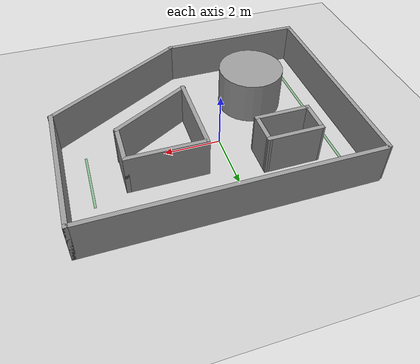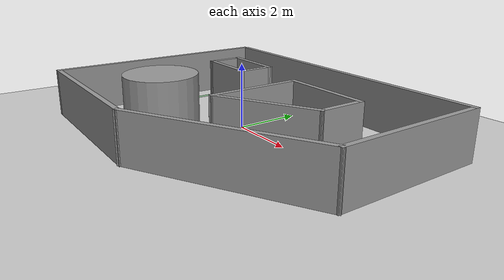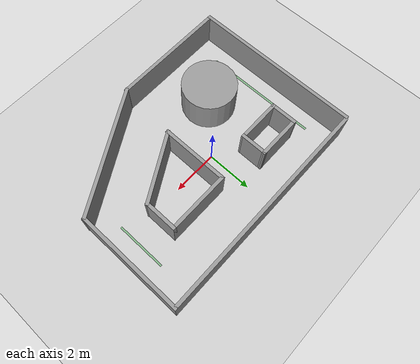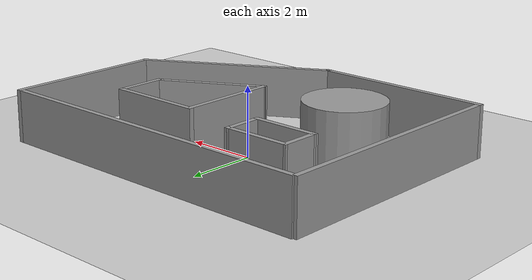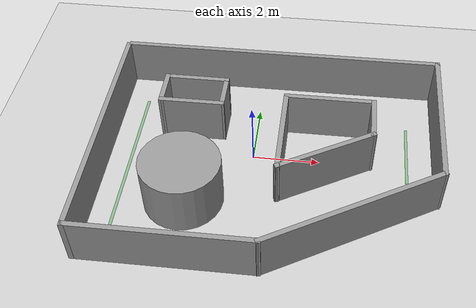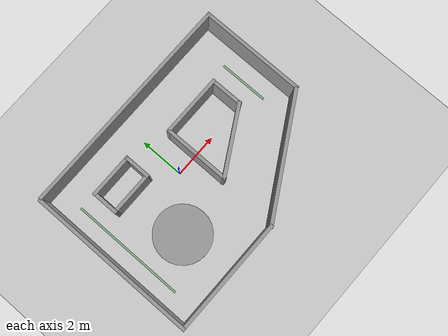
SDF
<sdf version="1.7">
 <world name="default">
  <light name="sun" type="directional">
   <pose>0 0 10 0 -0 0</pose>
   <diffuse>0.8 0.8 0.8 1</diffuse>
   <specular>0.2 0.2 0.2 1</specular>
   <attenuation>
    <range>1000</range>
    <constant>0.9</constant>
    <linear>0.01</linear>
    <quadratic>0.001</quadratic>
   </attenuation>
   <direction>-0.5 0.1 -0.9</direction>
   <spot><inner_angle>0</inner_angle><outer_angle>0</outer_angle><falloff>0</falloff></spot>
  </light>
  <model name="ground_plane">
   <static>1</static>
   <link name="link">
    <collision name="collision">
     <geometry><plane><normal>0 0 1</normal><size>100 100</size></plane></geometry>
     <surface>
      <contact><collide_bitmask>65535</collide_bitmask></contact>
      <friction><ode><mu>100</mu><mu2>50</mu2></ode></friction>
     </surface>
    </collision>
    <visual name="visual">
     <cast_shadows>0</cast_shadows>
     <geometry><plane><normal>0 0 1</normal><size>100 100</size></plane></geometry>
     <material>
      <script><uri>file://media/materials/scripts/gazebo.material</uri><name>Gazebo/Grey</name></script>
     </material>
    </visual>
   </link>
  </model>
  <gravity>0 0 -9.8</gravity>
  <magnetic_field>6e-06 2.3e-05 -4.2e-05</magnetic_field>
  <atmosphere type="adiabatic"/>
  <physics type="ode">
   <max_step_size>0.001</max_step_size>
   <real_time_factor>1</real_time_factor>
   <real_time_update_rate>1000</real_time_update_rate>
  </physics>
  <scene><ambient>0.4 0.4 0.4 1</ambient><background>0.7 0.7 0.7 1</background><shadows>1</shadows></scene>
  <spherical_coordinates>
   <surface_model>EARTH_WGS84</surface_model>
   <latitude_deg>0</latitude_deg>
   <longitude_deg>0</longitude_deg>
   <elevation>0</elevation>
   <heading_deg>0</heading_deg>
  </spherical_coordinates>
  <model name="map_3">
   <pose>0.536282 -0.465582 0 0 -0 0</pose>
   <link name="Wall_0">
    <collision name="Wall_0_Collision">
     <geometry><box><size>10 0.15 1.5</size></box></geometry>
     <pose>0 0 0.75 0 -0 0</pose>
    </collision>
    <visual name="Wall_0_Visual">
     <pose>0 0 0.75 0 -0 0</pose>
     <geometry><box><size>10 0.15 1.5</size></box></geometry>
     <material>
      <script><uri>file://media/materials/scripts/gazebo.material</uri><name>Gazebo/Grey</name></script>
      <ambient>1 1 1 1</ambient>
     </material>
     <meta><layer>0</layer></meta>
    </visual>
    <pose>0.036323 3.7137 0 0 -0 0</pose>
   </link>
   <link name="Wall_15">
    <collision name="Wall_15_Collision">
     <geometry><box><size>2 0.15 1.5</size></box></geometry>
     <pose>0 0 0.75 0 -0 0</pose>
    </collision>
    <visual name="Wall_15_Visual">
     <pose>0 0 0.75 0 -0 0</pose>
     <geometry><box><size>2 0.15 1.5</size></box></geometry>
     <material>
      <script><uri>file://media/materials/scripts/gazebo.material</uri><name>Gazebo/Grey</name></script>
      <ambient>1 1 1 1</ambient>
     </material>
     <meta><layer>0</layer></meta>
    </visual>
    <pose>-2.48368 2.2592 0 0 -0 0.001622</pose>
   </link>
   <link name="Wall_16">
    <collision name="Wall_16_Collision">
     <geometry><box><size>1.2 0.15 1.5</size></box></geometry>
     <pose>0 0 0.75 0 -0 0</pose>
    </collision>
    <visual name="Wall_16_Visual">
     <pose>0 0 0.75 0 -0 0</pose>
     <geometry><box><size>1.2 0.15 1.5</size></box></geometry>
     <material>
      <script><uri>file://media/materials/scripts/gazebo.material</uri><name>Gazebo/Grey</name></script>
      <ambient>1 1 1 1</ambient>
     </material>
     <meta><layer>0</layer></meta>
    </visual>
    <pose>-1.55868 1.7357 0 0 -0 -1.5708</pose>
   </link>
   <link name="Wall_17">
    <collision name="Wall_17_Collision">
     <geometry><box><size>2 0.15 1.5</size></box></geometry>
     <pose>0 0 0.75 0 -0 0</pose>
    </collision>
    <visual name="Wall_17_Visual">
     <pose>0 0 0.75 0 -0 0</pose>
     <geometry><box><size>2 0.15 1.5</size></box></geometry>
     <material>
      <script><uri>file://media/materials/scripts/gazebo.material</uri><name>Gazebo/Grey</name></script>
      <ambient>1 1 1 1</ambient>
     </material>
     <meta><layer>0</layer></meta>
    </visual>
    <pose>-2.48368 1.2092 0 0 -0 -3.13997</pose>
   </link>
   <link name="Wall_18">
    <collision name="Wall_18_Collision">
     <geometry><box><size>1.2 0.15 1.5</size></box></geometry>
     <pose>0 0 0.75 0 -0 0</pose>
    </collision>
    <visual name="Wall_18_Visual">
     <pose>0 0 0.75 0 -0 0</pose>
     <geometry><box><size>1.2 0.15 1.5</size></box></geometry>
     <material>
      <script><uri>file://media/materials/scripts/gazebo.material</uri><name>Gazebo/Grey</name></script>
      <ambient>1 1 1 1</ambient>
     </material>
     <meta><layer>0</layer></meta>
    </visual>
    <pose>-3.40868 1.7327 0 0 -0 1.5708</pose>
   </link>
   <link name="Wall_20">
    <collision name="Wall_20_Collision">
     <geometry><box><size>3 0.15 1.5</size></box></geometry>
     <pose>0 0 0.75 0 -0 0</pose>
    </collision>
    <visual name="Wall_20_Visual">
     <pose>0 0 0.75 0 -0 0</pose>
     <geometry><box><size>3 0.15 1.5</size></box></geometry>
     <material>
      <script><uri>file://media/materials/scripts/gazebo.material</uri><name>Gazebo/Grey</name></script>
      <ambient>1 1 1 1</ambient>
     </material>
     <meta><layer>0</layer></meta>
    </visual>
    <pose>0.341323 0.325698 0 0 -0 -1.5708</pose>
   </link>
   <link name="Wall_22">
    <collision name="Wall_22_Collision">
     <geometry><box><size>2.8 0.15 1.5</size></box></geometry>
     <pose>0 0 0.75 0 -0 0</pose>
    </collision>
    <visual name="Wall_22_Visual">
     <pose>0 0 0.75 0 -0 0</pose>
     <geometry><box><size>2.8 0.15 1.5</size></box></geometry>
     <material>
      <script><uri>file://media/materials/scripts/gazebo.material</uri><name>Gazebo/Grey</name></script>
      <ambient>1 1 1 1</ambient>
     </material>
     <meta><layer>0</layer></meta>
    </visual>
    <pose>1.66632 1.7507 0 0 -0 0</pose>
   </link>
   <link name="Wall_24">
    <collision name="Wall_24_Collision">
     <geometry><box><size>1.5 0.15 1.5</size></box></geometry>
     <pose>0 0 0.75 0 -0 0</pose>
    </collision>
    <visual name="Wall_24_Visual">
     <pose>0 0 0.75 0 -0 0</pose>
     <geometry><box><size>1.5 0.15 1.5</size></box></geometry>
     <material>
      <script><uri>file://media/materials/scripts/gazebo.material</uri><name>Gazebo/Grey</name></script>
      <ambient>1 1 1 1</ambient>
     </material>
     <meta><layer>0</layer></meta>
    </visual>
    <pose>2.99132 1.0757 0 0 -0 -1.5708</pose>
   </link>
   <link name="Wall_26">
    <collision name="Wall_26_Collision">
     <geometry><box><size>3.19466 0.15 1.5</size></box></geometry>
     <pose>0 0 0.75 0 -0 0</pose>
    </collision>
    <visual name="Wall_26_Visual">
     <pose>0 0 0.75 0 -0 0</pose>
     <geometry><box><size>3.19466 0.15 1.5</size></box></geometry>
     <material>
      <script><uri>file://media/materials/scripts/gazebo.material</uri><name>Gazebo/Grey</name></script>
      <ambient>1 1 1 1</ambient>
     </material>
     <meta><layer>0</layer></meta>
    </visual>
    <pose>1.66632 -0.349302 0 0 -0 0.515073</pose>
   </link>
   <link name="Wall_30">
    <collision name="Wall_30_Collision">
     <geometry><box><size>2.29 0.15 0.1</size></box></geometry>
     <pose>0 0 0.05 0 -0 0</pose>
    </collision>
    <visual name="Wall_30_Visual">
     <pose>0 0 0.05 0 -0 0</pose>
     <geometry><box><size>2.29 0.15 0.1</size></box></geometry>
     <material>
      <script><uri>file://media/materials/scripts/gazebo.material</uri><name>Gazebo/Grey</name></script>
      <ambient>1 1 1 1</ambient>
     </material>
     <meta><layer>0</layer></meta>
    </visual>
    <pose>-2.36018 -1.34641 0 0 -0 0</pose>
   </link>
   <link name="Wall_33">
    <collision name="Wall_33_Collision">
     <geometry><box><size>2.29 0.15 0.1</size></box></geometry>
     <pose>0 0 0.05 0 -0 0</pose>
    </collision>
    <visual name="Wall_33_Visual">
     <pose>0 0 0.05 0 -0 0</pose>
     <geometry><box><size>2.29 0.15 0.1</size></box></geometry>
     <material>
      <script><uri>file://media/materials/scripts/gazebo.material</uri><name>Gazebo/Grey</name></script>
      <ambient>1 1 1 1</ambient>
     </material>
     <meta><layer>0</layer></meta>
    </visual>
    <pose>-2.37095 -1.33891 0 0 -0 -1.5708</pose>
   </link>
   <link name="Wall_5">
    <collision name="Wall_5_Collision">
     <geometry><box><size>4.75 0.15 1.5</size></box></geometry>
     <pose>0 0 0.75 0 -0 0</pose>
    </collision>
    <visual name="Wall_5_Visual">
     <pose>0 0 0.75 0 -0 0</pose>
     <geometry><box><size>4.75 0.15 1.5</size></box></geometry>
     <material>
      <script><uri>file://media/materials/scripts/gazebo.material</uri><name>Gazebo/Grey</name></script>
      <ambient>1 1 1 1</ambient>
     </material>
     <meta><layer>0</layer></meta>
    </visual>
    <pose>4.96132 1.4137 0 0 -0 -1.5708</pose>
   </link>
   <link name="Wall_6">
    <collision name="Wall_6_Collision">
     <geometry><box><size>5.75 0.15 1.5</size></box></geometry>
     <pose>0 0 0.75 0 -0 0</pose>
    </collision>
    <visual name="Wall_6_Visual">
     <pose>0 0 0.75 0 -0 0</pose>
     <geometry><box><size>5.75 0.15 1.5</size></box></geometry>
     <material>
      <script><uri>file://media/materials/scripts/gazebo.material</uri><name>Gazebo/Grey</name></script>
      <ambient>1 1 1 1</ambient>
     </material>
     <meta><layer>0</layer></meta>
    </visual>
    <pose>2.53632 -2.2863 0 0 -0 -2.61802</pose>
   </link>
   <link name="Wall_7">
    <collision name="Wall_7_Collision">
     <geometry><box><size>5.25 0.15 1.5</size></box></geometry>
     <pose>0 0 0.75 0 -0 0</pose>
    </collision>
    <visual name="Wall_7_Visual">
     <pose>0 0 0.75 0 -0 0</pose>
     <geometry><box><size>5.25 0.15 1.5</size></box></geometry>
     <material>
      <script><uri>file://media/materials/scripts/gazebo.material</uri><name>Gazebo/Grey</name></script>
      <ambient>1 1 1 1</ambient>
     </material>
     <meta><layer>0</layer></meta>
    </visual>
    <pose>-2.43868 -3.6863 0 0 -0 3.14159</pose>
   </link>
   <link name="Wall_8">
    <collision name="Wall_8_Collision">
     <geometry><box><size>7.5 0.15 1.5</size></box></geometry>
     <pose>0 0 0.75 0 -0 0</pose>
    </collision>
    <visual name="Wall_8_Visual">
     <pose>0 0 0.75 0 -0 0</pose>
     <geometry><box><size>7.5 0.15 1.5</size></box></geometry>
     <material>
      <script><uri>file://media/materials/scripts/gazebo.material</uri><name>Gazebo/Grey</name></script>
      <ambient>1 1 1 1</ambient>
     </material>
     <meta><layer>0</layer></meta>
    </visual>
    <pose>-4.98868 -0.011302 0 0 -0 1.5708</pose>
   </link>
   <static>1</static>
  </model>
  <model name="cylinder_testing">
   <link name="link_0">
    <inertial>
     <mass>8.84005</mass>
     <inertia><ixx>4.93884</ixx><ixy>0</ixy><ixz>0</ixz><iyy>4.93884</iyy><iyz>0</iyz><izz>6.10484</izz></inertia>
    </inertial>
    <visual name="visual">
     <geometry><cylinder><radius>1.17523</radius><length>1.60023</length></cylinder></geometry>
     <material>
      <lighting>1</lighting>
      <script><uri>file://media/materials/scripts/gazebo.material</uri><name>Gazebo/Grey</name></script>
      <shader type="pixel"/>
     </material>
    </visual>
    <collision name="collision">
     <geometry><cylinder><radius>1.17524</radius><length>1.60023</length></cylinder></geometry>
     <surface>
      <friction>
       <ode><mu>1</mu><mu2>1</mu2><fdir1>0 0 0</fdir1><slip1>0</slip1><slip2>0</slip2></ode>
       <torsional>
        <coefficient>1</coefficient>
        <patch_radius>0</patch_radius>
        <surface_radius>0</surface_radius>
        <use_patch_radius>1</use_patch_radius>
        <ode><slip>0</slip></ode>
       </torsional>
      </friction>
      <bounce><restitution_coefficient>0</restitution_coefficient><threshold>1e+06</threshold></bounce>
      <contact>
       <collide_without_contact>0</collide_without_contact>
       <collide_without_contact_bitmask>1</collide_without_contact_bitmask>
       <collide_bitmask>1</collide_bitmask>
       <ode>
        <soft_cfm>0</soft_cfm>
        <soft_erp>0.2</soft_erp>
        <kp>1e+13</kp>
        <kd>1</kd>
        <max_vel>0.01</max_vel>
        <min_depth>0</min_depth>
       </ode>
       <bullet>
        <split_impulse>1</split_impulse>
        <split_impulse_penetration_threshold>-0.01</split_impulse_penetration_threshold>
        <soft_cfm>0</soft_cfm>
        <soft_erp>0.2</soft_erp>
        <kp>1e+13</kp>
        <kd>1</kd>
       </bullet>
      </contact>
     </surface>
    </collision>
   </link>
   <static>1</static>
   <pose>-1.81829 -1.80095 0.798033 0 -0 0</pose>
  </model>
  <model name="map_3_spawn">
   <link name="spawn_1">
    <inertial>
     <mass>0.0173768</mass>
     <inertia>
      <ixx>0.0381864</ixx>
      <ixy>0</ixy>
      <ixz>0</ixz>
      <iyy>1.153e-05</iyy>
      <iyz>0</iyz>
      <izz>0.0381925</izz>
     </inertia>
    </inertial>
    <pose>-4.19029 -0.505967 0 0 -0 0</pose>
    <visual name="visual">
     <geometry><box><size>0.078015 5.13506 0.043326</size></box></geometry>
     <material>
      <lighting>1</lighting>
      <script><uri>file://media/materials/scripts/gazebo.material</uri><name>Gazebo/Green</name></script>
      <shader type="pixel"><normal_map>__default__</normal_map></shader>
      <ambient>0 1 0 1</ambient>
      <diffuse>0 1 0 1</diffuse>
      <specular>0.1 0.1 0.1 1</specular>
      <emissive>0 0 0 1</emissive>
     </material>
     <transparency>0.6</transparency>
    </visual>
   </link>
   <link name="spawn_2">
    <inertial>
     <mass>0.0173768</mass>
     <inertia>
      <ixx>0.0381864</ixx>
      <ixy>0</ixy>
      <ixz>0</ixz>
      <iyy>1.153e-05</iyy>
      <iyz>0</iyz>
      <izz>0.0381925</izz>
     </inertia>
    </inertial>
    <pose>4.1903 0.505968 0 0 -0 0</pose>
    <visual name="visual">
     <geometry><box><size>0.078015 2.19796 0.043326</size></box></geometry>
     <material>
      <lighting>1</lighting>
      <script><uri>file://media/materials/scripts/gazebo.material</uri><name>Gazebo/Green</name></script>
      <shader type="pixel"><normal_map>__default__</normal_map></shader>
      <ambient>0 1 0 1</ambient>
      <diffuse>0 1 0 1</diffuse>
      <specular>0.1 0.1 0.1 1</specular>
      <emissive>0 0 0 1</emissive>
     </material>
     <transparency>0.6</transparency>
    </visual>
   </link>
   <static>1</static>
   <pose>0.472215 0.04417 -0 0 -0 0</pose>
  </model>
 </world>
</sdf>
